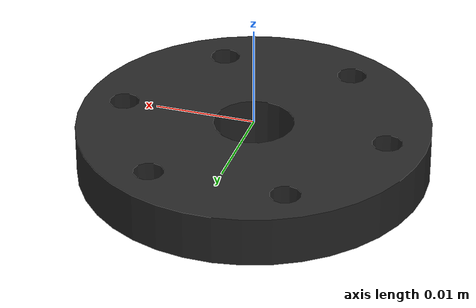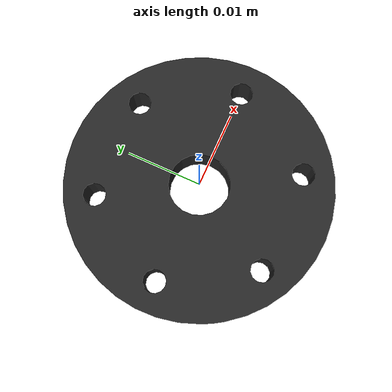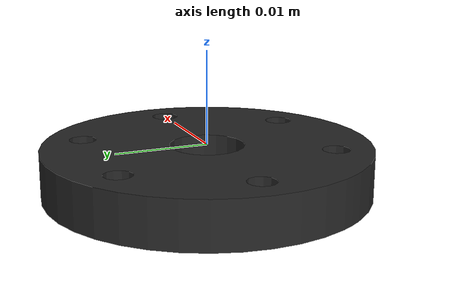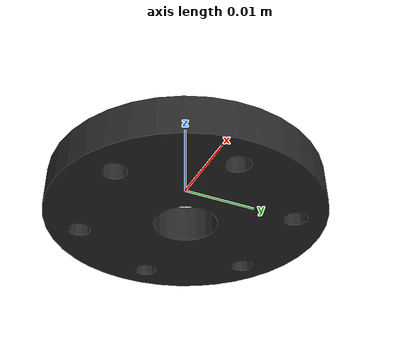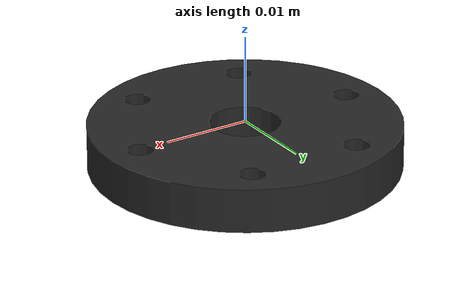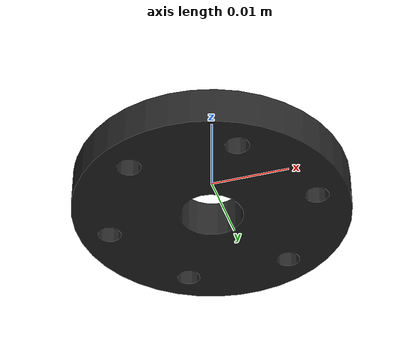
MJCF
<mujoco model="link6">
  <default>
    <default class="visual">
      <geom group="2" type="mesh" contype="0" conaffinity="0"/>
    </default>
    <default class="collision">
      <geom group="3" type="mesh"/>
    </default>
  </default>
  <asset>
    <material name="black_shell" specular="0.5" shininess="0.0" rgba="0.150000 0.150000 0.150000 1.000000"/>
    <mesh file="link6.obj"/>
    <mesh file="link6_collision_0.obj"/>
    <mesh file="link6_collision_1.obj"/>
  </asset>
  <worldbody>
    <body name="link6">
      <geom material="black_shell" mesh="link6" class="visual"/>
      <geom mesh="link6_collision_0" rgba="0.374869228633286 0.6053805504120915 0.6626287226999623 1" class="collision"/>
      <geom mesh="link6_collision_1" rgba="0.8265246166018768 0.7974655043443253 0.7930017359856139 1" class="collision"/>
    </body>
  </worldbody>
</mujoco>
